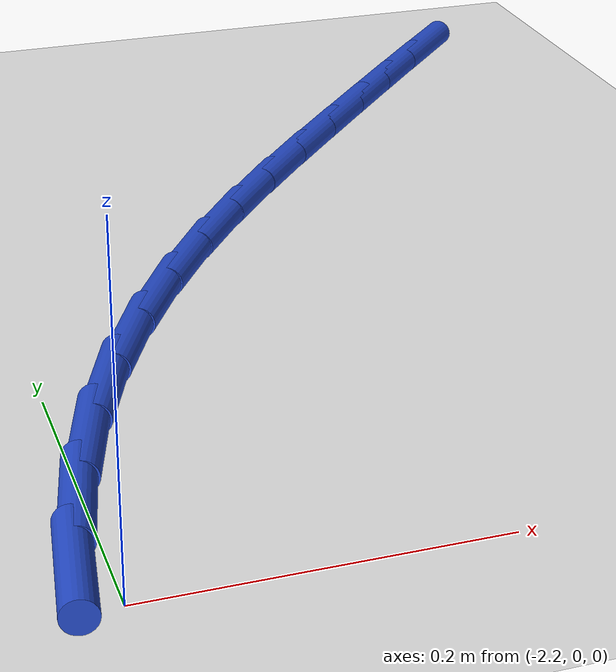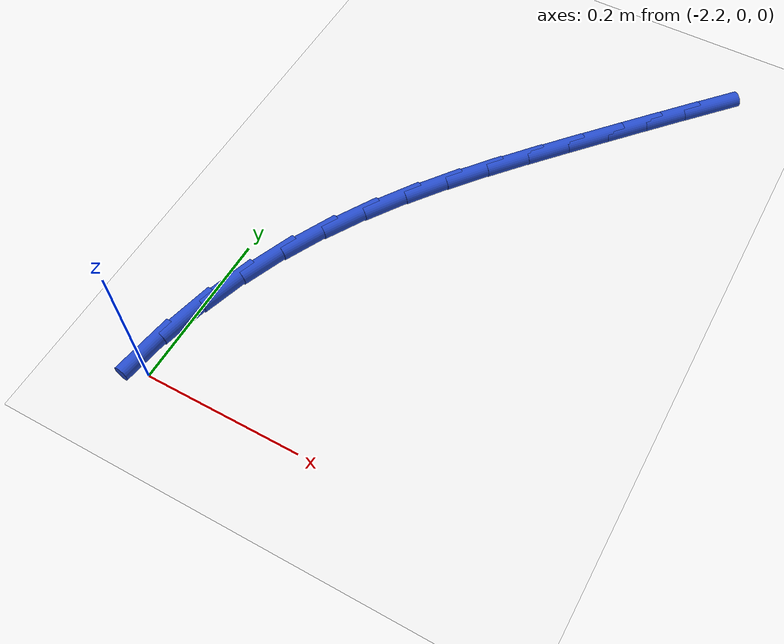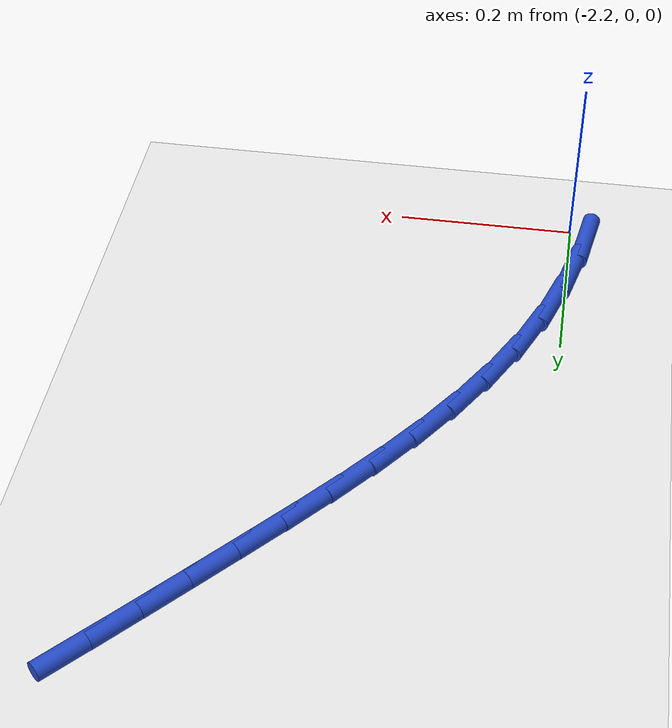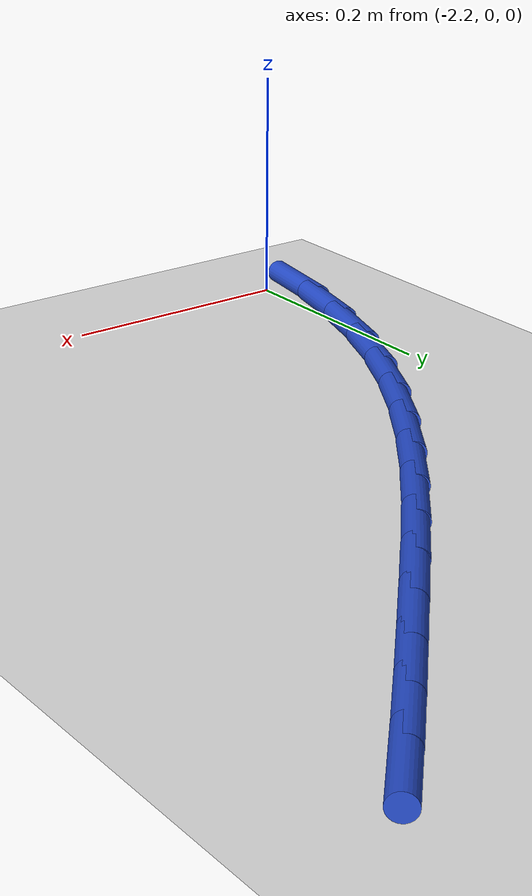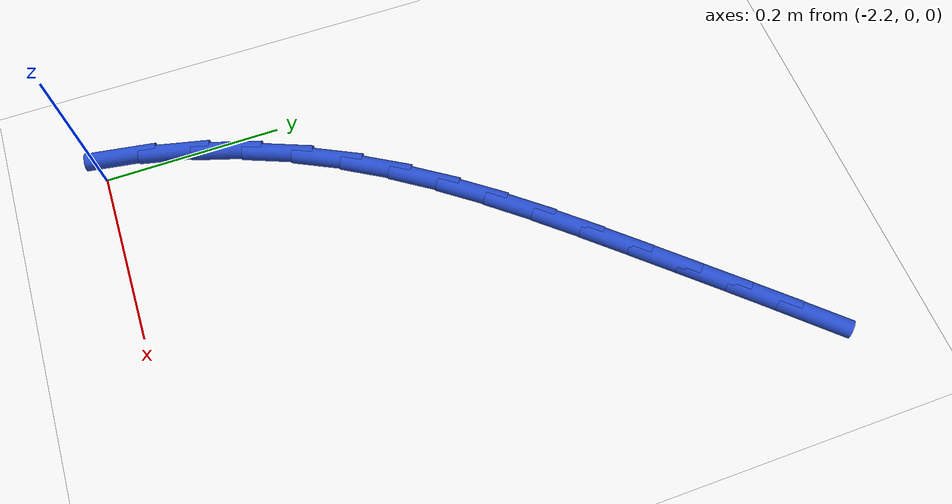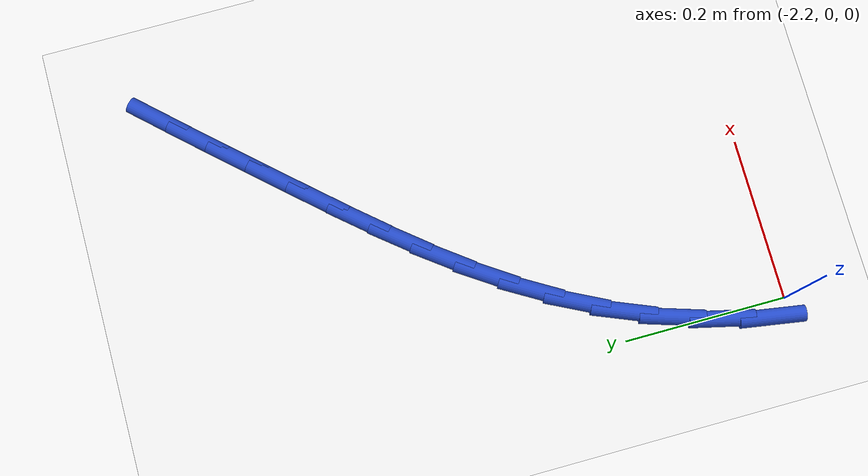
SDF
<sdf version="1.6">
 <world name="default">
  <model name="ground_plane">
   <static>1</static>
   <link name="link">
    <collision name="collision">
     <geometry><plane><normal>0 0 1</normal><size>100 100</size></plane></geometry>
     <surface><friction><ode><mu>100</mu><mu2>50</mu2></ode></friction></surface>
    </collision>
    <visual name="visual">
     <cast_shadows>0</cast_shadows>
     <geometry><plane><normal>0 0 1</normal><size>100 100</size></plane></geometry>
     <material>
      <script><uri>file://media/materials/scripts/gazebo.material</uri><name>Gazebo/WhiteGlow</name></script>
     </material>
    </visual>
   </link>
  </model>
  <model name="line">
   <link name="link_45">
    <pose>-1.7860285916567926 0.6768896733693615 0.01 0 1.57 0.825023582617315</pose>
    <collision name="collision">
     <geometry><cylinder><radius>0.01</radius><length>0.08</length></cylinder></geometry>
    </collision>
    <visual name="visual">
     <material>
      <script><name>Gazebo/Blue</name><uri>file://media/materials/scripts/gazebo.material</uri></script>
     </material>
     <geometry><cylinder><radius>0.01</radius><length>0.08</length></cylinder></geometry>
    </visual>
   </link>
   <link name="link_46">
    <pose>-1.823589836448139 0.6362271558546357 0.01 0 1.57 0.8321266250139504</pose>
    <collision name="collision">
     <geometry><cylinder><radius>0.01</radius><length>0.08</length></cylinder></geometry>
    </collision>
    <visual name="visual">
     <material>
      <script><name>Gazebo/Blue</name><uri>file://media/materials/scripts/gazebo.material</uri></script>
     </material>
     <geometry><cylinder><radius>0.01</radius><length>0.08</length></cylinder></geometry>
    </visual>
   </link>
   <link name="link_47">
    <pose>-1.8607917626369757 0.5953752365073814 0.01 0 1.57 0.8368377469145585</pose>
    <collision name="collision">
     <geometry><cylinder><radius>0.01</radius><length>0.08</length></cylinder></geometry>
    </collision>
    <visual name="visual">
     <material>
      <script><name>Gazebo/Blue</name><uri>file://media/materials/scripts/gazebo.material</uri></script>
     </material>
     <geometry><cylinder><radius>0.01</radius><length>0.08</length></cylinder></geometry>
    </visual>
   </link>
   <link name="link_48">
    <pose>-1.8978565264303462 0.5542867526139137 0.01 0 1.57 0.8392747522339952</pose>
    <collision name="collision">
     <geometry><cylinder><radius>0.01</radius><length>0.08</length></cylinder></geometry>
    </collision>
    <visual name="visual">
     <material>
      <script><name>Gazebo/Blue</name><uri>file://media/materials/scripts/gazebo.material</uri></script>
     </material>
     <geometry><cylinder><radius>0.01</radius><length>0.08</length></cylinder></geometry>
    </visual>
   </link>
   <link name="link_49">
    <pose>-1.934997576668204 0.5129114091819971 0.01 0 1.57 0.8450799492739118</pose>
    <collision name="collision">
     <geometry><cylinder><radius>0.01</radius><length>0.08</length></cylinder></geometry>
    </collision>
    <visual name="visual">
     <material>
      <script><name>Gazebo/Blue</name><uri>file://media/materials/scripts/gazebo.material</uri></script>
     </material>
     <geometry><cylinder><radius>0.01</radius><length>0.08</length></cylinder></geometry>
    </visual>
   </link>
   <link name="link_50">
    <pose>-1.9721083901963368 0.47108380852490683 0.01 0 1.57 0.8613286410183159</pose>
    <collision name="collision">
     <geometry><cylinder><radius>0.01</radius><length>0.08</length></cylinder></geometry>
    </collision>
    <visual name="visual">
     <material>
      <script><name>Gazebo/Blue</name><uri>file://media/materials/scripts/gazebo.material</uri></script>
     </material>
     <geometry><cylinder><radius>0.01</radius><length>0.08</length></cylinder></geometry>
    </visual>
   </link>
   <link name="link_51">
    <pose>-2.0086772002762423 0.4284927757337677 0.01 0 1.57 0.8884379855887607</pose>
    <collision name="collision">
     <geometry><cylinder><radius>0.01</radius><length>0.08</length></cylinder></geometry>
    </collision>
    <visual name="visual">
     <material>
      <script><name>Gazebo/Blue</name><uri>file://media/materials/scripts/gazebo.material</uri></script>
     </material>
     <geometry><cylinder><radius>0.01</radius><length>0.08</length></cylinder></geometry>
    </visual>
   </link>
   <link name="link_52">
    <pose>-2.0441661795264148 0.3848177611722751 0.01 0 1.57 0.9264203756291397</pose>
    <collision name="collision">
     <geometry><cylinder><radius>0.01</radius><length>0.08</length></cylinder></geometry>
    </collision>
    <visual name="visual">
     <material>
      <script><name>Gazebo/Blue</name><uri>file://media/materials/scripts/gazebo.material</uri></script>
     </material>
     <geometry><cylinder><radius>0.01</radius><length>0.08</length></cylinder></geometry>
    </visual>
   </link>
   <link name="link_53">
    <pose>-2.0780375005653453 0.33973821520412506 0.01 0 1.57 0.975247700759279</pose>
    <collision name="collision">
     <geometry><cylinder><radius>0.01</radius><length>0.08</length></cylinder></geometry>
    </collision>
    <visual name="visual">
     <material>
      <script><name>Gazebo/Blue</name><uri>file://media/materials/scripts/gazebo.material</uri></script>
     </material>
     <geometry><cylinder><radius>0.01</radius><length>0.08</length></cylinder></geometry>
    </visual>
   </link>
   <link name="link_54">
    <pose>-2.1097533360115266 0.2929335881930127 0.01 0 1.57 1.0347175142142024</pose>
    <collision name="collision">
     <geometry><cylinder><radius>0.01</radius><length>0.08</length></cylinder></geometry>
    </collision>
    <visual name="visual">
     <material>
      <script><name>Gazebo/Blue</name><uri>file://media/materials/scripts/gazebo.material</uri></script>
     </material>
     <geometry><cylinder><radius>0.01</radius><length>0.08</length></cylinder></geometry>
    </visual>
   </link>
   <link name="link_55">
    <pose>-2.138775858483452 0.2440833305026346 0.01 0 1.57 1.104291807291516</pose>
    <collision name="collision">
     <geometry><cylinder><radius>0.01</radius><length>0.08</length></cylinder></geometry>
    </collision>
    <visual name="visual">
     <material>
      <script><name>Gazebo/Blue</name><uri>file://media/materials/scripts/gazebo.material</uri></script>
     </material>
     <geometry><cylinder><radius>0.01</radius><length>0.08</length></cylinder></geometry>
    </visual>
   </link>
   <link name="link_56">
    <pose>-2.1645672405996144 0.19286689249668562 0.01 0 1.57 1.1828875239925571</pose>
    <collision name="collision">
     <geometry><cylinder><radius>0.01</radius><length>0.08</length></cylinder></geometry>
    </collision>
    <visual name="visual">
     <material>
      <script><name>Gazebo/Blue</name><uri>file://media/materials/scripts/gazebo.material</uri></script>
     </material>
     <geometry><cylinder><radius>0.01</radius><length>0.08</length></cylinder></geometry>
    </visual>
   </link>
   <link name="link_57">
    <pose>-2.1865914810009395 0.13896682363004378 0.01 0 1.57 1.264557348541153</pose>
    <collision name="collision">
     <geometry><cylinder><radius>0.01</radius><length>0.08</length></cylinder></geometry>
    </collision>
    <visual name="visual">
     <material>
      <script><name>Gazebo/Blue</name><uri>file://media/materials/scripts/gazebo.material</uri></script>
     </material>
     <geometry><cylinder><radius>0.01</radius><length>0.08</length></cylinder></geometry>
    </visual>
   </link>
   <link name="link_58">
    <pose>-2.204488433558373 0.08236413157050423 0.01 0 1.57 1.3413484820967088</pose>
    <collision name="collision">
     <geometry><cylinder><radius>0.01</radius><length>0.08</length></cylinder></geometry>
    </collision>
    <visual name="visual">
     <material>
      <script><name>Gazebo/Blue</name><uri>file://media/materials/scripts/gazebo.material</uri></script>
     </material>
     <geometry><cylinder><radius>0.01</radius><length>0.08</length></cylinder></geometry>
    </visual>
   </link>
   <link name="link_59">
    <pose>-2.2182175798785817 0.02358229021103104 0.01 0 1.57 1.4138557176043727</pose>
    <collision name="collision">
     <geometry><cylinder><radius>0.01</radius><length>0.08</length></cylinder></geometry>
    </collision>
    <visual name="visual">
     <material>
      <script><name>Gazebo/Blue</name><uri>file://media/materials/scripts/gazebo.material</uri></script>
     </material>
     <geometry><cylinder><radius>0.01</radius><length>0.08</length></cylinder></geometry>
    </visual>
   </link>
  </model>
 </world>
</sdf>
